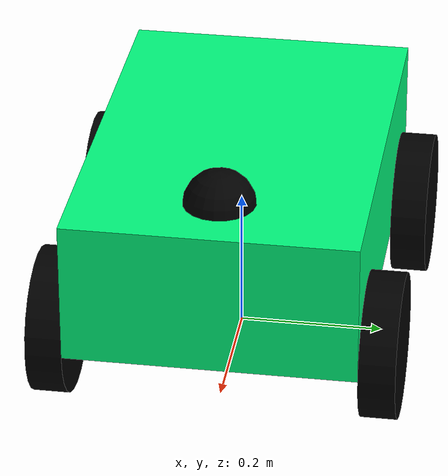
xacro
<?xml version="1.0"?>
<robot name="my_robot" xmlns:xacro="http://www.ros.org/wiki/xacro">

    <xacro:property name="base_length" value="0.6" />
    <xacro:property name="base_width" value="0.4" />
    <xacro:property name="base_height" value="0.2" />
    <xacro:property name="wheel_radius" value="0.1" />
    <xacro:property name="wheel_length" value="0.05" />

    <material name ="blue">
        <color rgba="0 1 0.5 1"/>
    </material>
    <material name ="black">
        <color rgba="0 0 0 1"/>
    </material>
    <link name="base_link">
        <inertial>
            <mass value="4.0"/>
            <inertia ixx="0.0667" ixy="0" ixz="0" iyy="0.133" iyz="0" izz="0.173"/>
        </inertial>
        <visual>
            <geometry>
                <box size="0.6 0.4 0.2"></box>
            </geometry>
            <origin xyz="0 0 0.2" rpy="0 0 0"/>
            <material name="blue"/>
        </visual>
        <collision>
        <geometry>
                <box size="0.6 0.4 0.2"></box>
        </geometry>
        <origin xyz="0 0 0.2" rpy="0 0 0"/>
        </collision>
    </link>

    <link name="Rb_wheel_link">
        <inertial>
            <mass value="1.0"/>
            <inertia ixx="0.0027" ixy="0" ixz="0" iyy="0.0027" iyz="0" izz="0.005"/>
        </inertial>
        <visual>
            <geometry>
                <cylinder radius="0.1" length="0.05"/>
            </geometry>
            <origin xyz="0 0 0" rpy="${pi/2.0} 0 0" />
            <material name="black" />
        </visual>
        <collision>
        <geometry>
                <cylinder radius="0.1" length="0.05"/>
            </geometry>
            <origin xyz="0 0 0" rpy="${pi/2.0} 0 0" />
                <surface>
                    <friction>
                        <ode>
                            <mu>2.0</mu>
                            <mu2>2.0</mu2>
                            <slip1>0.0</slip1>
                            <slip2>0.0</slip2>
                        </ode>
                    </friction>
                    <contact>
                        <ode>
                            <kp>100000.0</kp>
                            <kd>1.0</kd>
                            <max_vel>1.0</max_vel>
                            <min_depth>0.001</min_depth>
                        </ode>
                    </contact>
                </surface>
        </collision>

    </link>
    <link name="Rf_wheel_link">
        <inertial>
            <mass value="1.0"/>
            <inertia ixx="0.0027" ixy="0" ixz="0" iyy="0.0027" iyz="0" izz="0.005"/>
        </inertial>
        <visual>
            <geometry>
                <cylinder radius="0.1" length="0.05"/>
            </geometry>
            <origin xyz="0 0 0" rpy="${pi/2.0} 0 0" />
            <material name="black" />
        </visual>
        <collision>
            <geometry>
                <cylinder radius="0.1" length="0.05"/>
            </geometry>
            <origin xyz="0 0 0" rpy="${pi/2.0} 0 0" />
                <surface>
                    <friction>
                        <ode>
                            <mu>2.0</mu>
                            <mu2>2.0</mu2>
                            <slip1>0.0</slip1>
                            <slip2>0.0</slip2>
                        </ode>
                    </friction>
                    <contact>
                        <ode>
                            <kp>100000.0</kp>
                            <kd>1.0</kd>
                            <max_vel>1.0</max_vel>
                            <min_depth>0.001</min_depth>
                        </ode>
                    </contact>
                </surface>
        </collision>
    </link>
    <link name="Lb_wheel_link">
        <inertial>
            <mass value="1.0"/>
            <inertia ixx="0.0027" ixy="0" ixz="0" iyy="0.0027" iyz="0" izz="0.005"/>
        </inertial>
        <visual>
            <geometry>
                <cylinder radius="0.1" length="0.05"/>
            </geometry>
            <origin xyz="0 0 0" rpy="${pi/2.0} 0 0" />
            <material name="black" />
        </visual>
        <collision>
                 <geometry>
                <cylinder radius="0.1" length="0.05"/>
            </geometry>
            <origin xyz="0 0 0" rpy="${pi/2.0} 0 0" />
                <surface>
                    <friction>
                        <ode>
                            <mu>2.0</mu>
                            <mu2>2.0</mu2>
                            <slip1>0.0</slip1>
                            <slip2>0.0</slip2>
                        </ode>
                    </friction>
                    <contact>
                        <ode>
                            <kp>100000.0</kp>
                            <kd>1.0</kd>
                            <max_vel>1.0</max_vel>
                            <min_depth>0.001</min_depth>
                        </ode>
                    </contact>
                </surface>
            </collision>
    </link>
    <link name="Lf_wheel_link">
        <inertial>
            <mass value="1.0"/>
            <inertia ixx="0.0027" ixy="0" ixz="0" iyy="0.0027" iyz="0" izz="0.005"/>
        </inertial>
        <visual>
            <geometry>
                <cylinder radius="0.1" length="0.05"/>
            </geometry>
            <origin xyz="0 0 0" rpy="${pi/2.0} 0 0" />
            <material name="black" />
        </visual>
        <collision>
            <geometry>
                <cylinder radius="0.1" length="0.05"/>
            </geometry>
            <origin xyz="0 0 0" rpy="${pi/2.0} 0 0" />
                <surface>
                    <friction>
                        <ode>
                            <mu>2.0</mu>
                            <mu2>2.0</mu2>
                            <slip1>0.0</slip1>
                            <slip2>0.0</slip2>
                        </ode>
                    </friction>
                    <contact>
                        <ode>
                            <kp>100000.0</kp>
                            <kd>1.0</kd>
                            <max_vel>1.0</max_vel>
                            <min_depth>0.001</min_depth>
                        </ode>
                    </contact>
                </surface>
        </collision>
    </link>
    <link name="lidar_link">
        <inertial>
            <mass value="0.2"/>
            <inertia ixx="0.0027" ixy="0" ixz="0" iyy="0.0027" iyz="0" izz="0.005"/>
        </inertial>
        <visual>
            <geometry>
                <sphere radius="0.05"/>
            </geometry>
            <origin xyz="0 0 0" rpy="0 0 0"/>
            <material name="black"/>
        </visual>
        <collision>
            <geometry>
                <sphere radius="0.05"/>
            </geometry>
            <origin xyz="0 0 0" rpy="0 0 0"/>
    </collision>
    </link>
    <joint name="base_rbwheel_joint" type="continuous">
        <parent link="base_link"/>
        <child link="Rb_wheel_link" />
        <origin xyz="-0.2 -0.225 0.1" rpy="0 0 0" />
        <axis xyz="0 1 0" />
    </joint>
    <joint name="base_rfwheel_joint" type="continuous">
        <parent link="base_link"/>
        <child link="Rf_wheel_link" />
        <origin xyz="0.2 -0.225 0.1" rpy="0 0 0" />
        <axis xyz="0 1 0" />
    </joint>
    <joint name="base_lbwheel_joint" type="continuous">
        <parent link="base_link"/>
        <child link="Lb_wheel_link" />
        <origin xyz="-0.2 0.225 0.1" rpy="0 0 0" />
        <axis xyz="0 1 0" />
    </joint>
    <joint name="base_lfwheel_joint" type="continuous">
        <parent link="base_link"/>
        <child link="Lf_wheel_link" />
        <origin xyz="0.2 0.225 0.1" rpy="0 0 0" />
        <axis xyz="0 1 0" />
    </joint>
    <joint name="lidar_joint" type="fixed">
        <parent link="base_link"/>
        <child link="lidar_link"/>
        <origin xyz="0.2 0 0.2975" rpy="0 0 0"/>
    </joint>

<gazebo>
  <plugin
    filename="gz-sim-diff-drive-system"
    name="gz::sim::systems::DiffDrive">

    <!-- LEFT SIDE -->
    <left_joint>base_lfwheel_joint</left_joint>
    <left_joint>base_lbwheel_joint</left_joint>

    <!-- RIGHT SIDE -->
    <right_joint>base_rfwheel_joint</right_joint>
    <right_joint>base_rbwheel_joint</right_joint>

    <wheel_separation>0.45</wheel_separation>
    <wheel_radius>0.1</wheel_radius>

    <topic>cmd_vel</topic>
    <odom_topic>odom</odom_topic>

    <odom_frame>odom</odom_frame>
    <base_frame>base_link</base_frame>
  </plugin>
</gazebo>
>

</robot>
